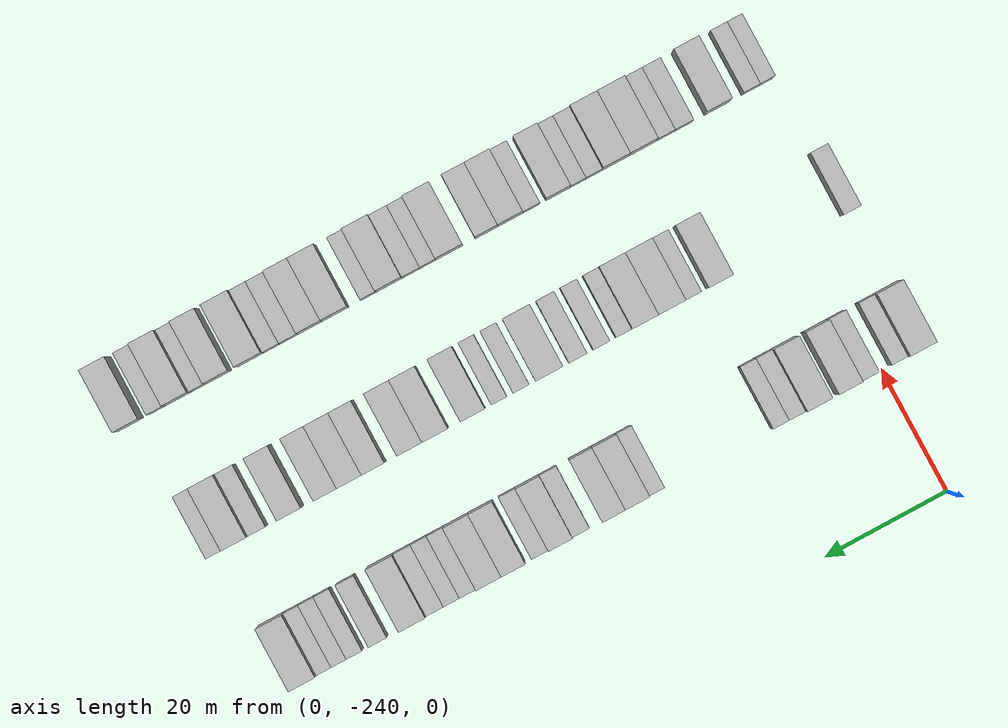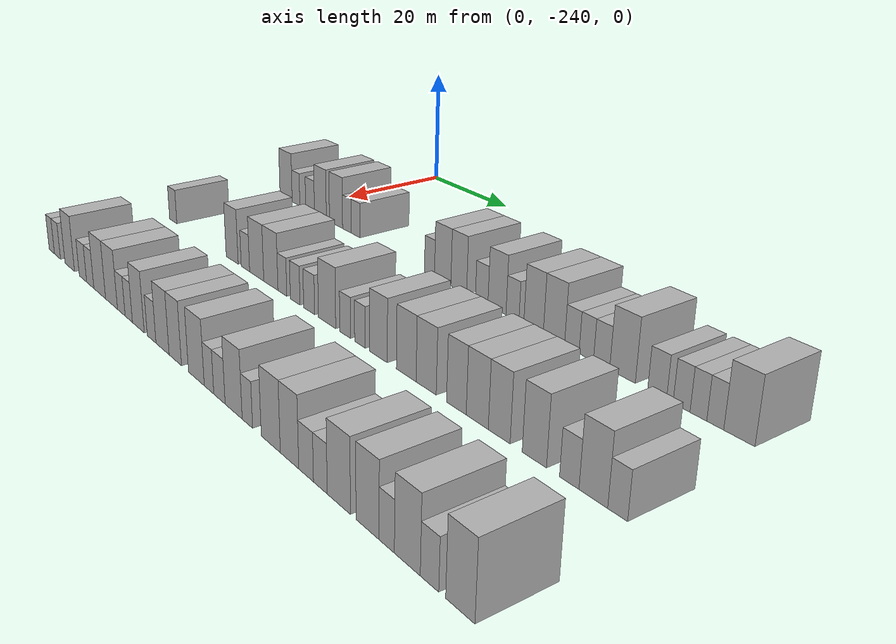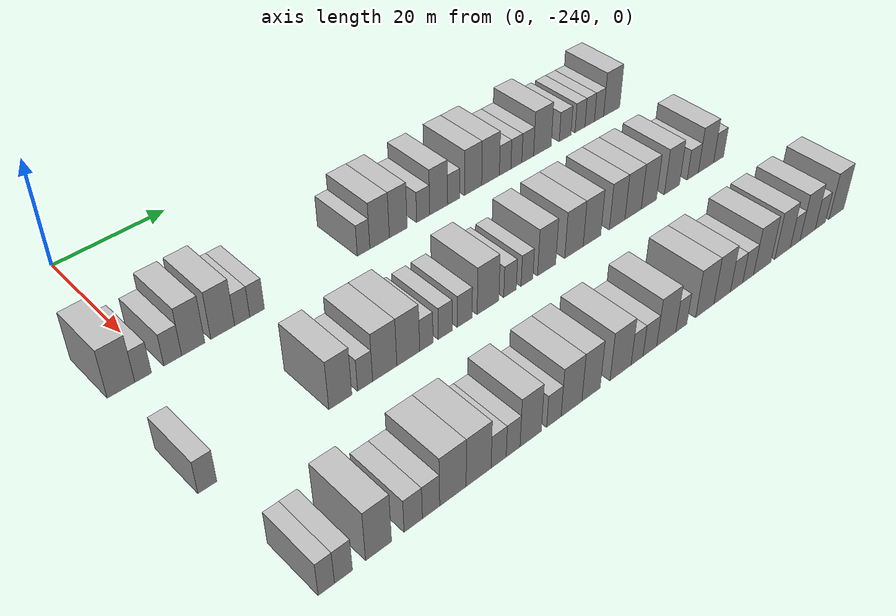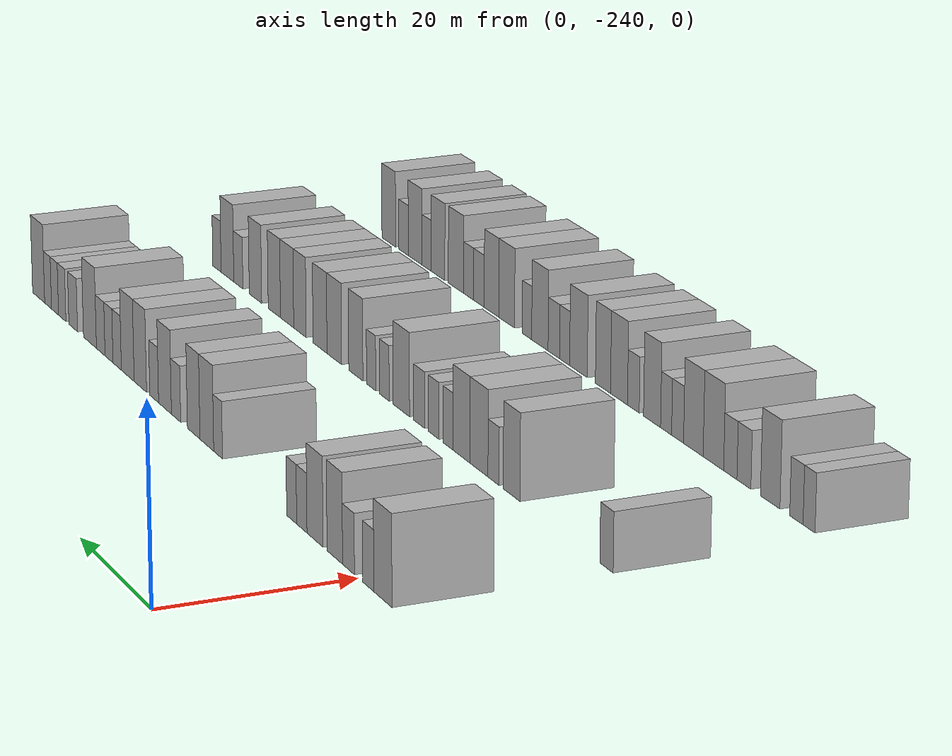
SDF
<sdf version="1.6">
 <world name="default">
  <model name="building_1">
   <static>1</static>
   <pose>25.0000 -245.8490 0 0.000000 0.000000 0.000000</pose>
   <link name="link">
    <pose>0 0 4.50 0 0 0</pose>
    <collision name="collision"><geometry><box><size>10.0000 4.3020 9.0000</size></box></geometry></collision>
    <visual name="visual">
     <cast_shadows>0</cast_shadows>
     <geometry><box><size>10.0000 4.3020 9.0000</size></box></geometry>
     <material>
      <script>
       <uri>model://HANNAS_wall/materials/scripts</uri>
       <uri>model://HANNAS_wall/materials/textures</uri>
       <name>vrc/HANNAS_wall</name>
      </script>
     </material>
    </visual>
   </link>
  </model>
  <model name="building_2">
   <static>1</static>
   <pose>25.0000 -242.3765 0 0.000000 0.000000 0.000000</pose>
   <link name="link">
    <pose>0 0 3.00 0 0 0</pose>
    <collision name="collision"><geometry><box><size>10.0000 2.6430 6.0000</size></box></geometry></collision>
    <visual name="visual">
     <cast_shadows>0</cast_shadows>
     <geometry><box><size>10.0000 2.6430 6.0000</size></box></geometry>
     <material>
      <script>
       <uri>model://HANNAS_wall/materials/scripts</uri>
       <uri>model://HANNAS_wall/materials/textures</uri>
       <name>vrc/HANNAS_wall</name>
      </script>
     </material>
    </visual>
   </link>
  </model>
  <model name="building_3">
   <static>1</static>
   <pose>25.0000 -237.5975 0 0.000000 0.000000 0.000000</pose>
   <link name="link">
    <pose>0 0 3.00 0 0 0</pose>
    <collision name="collision"><geometry><box><size>10.0000 2.9150 6.0000</size></box></geometry></collision>
    <visual name="visual">
     <cast_shadows>0</cast_shadows>
     <geometry><box><size>10.0000 2.9150 6.0000</size></box></geometry>
     <material>
      <script>
       <uri>model://HANNAS_wall/materials/scripts</uri>
       <uri>model://HANNAS_wall/materials/textures</uri>
       <name>vrc/HANNAS_wall</name>
      </script>
     </material>
    </visual>
   </link>
  </model>
  <model name="building_4">
   <static>1</static>
   <pose>25.0000 -234.2111 0 0.000000 0.000000 0.000000</pose>
   <link name="link">
    <pose>0 0 4.50 0 0 0</pose>
    <collision name="collision"><geometry><box><size>10.0000 3.8579 9.0000</size></box></geometry></collision>
    <visual name="visual">
     <cast_shadows>0</cast_shadows>
     <geometry><box><size>10.0000 3.8579 9.0000</size></box></geometry>
     <material>
      <script>
       <uri>model://HANNAS_wall/materials/scripts</uri>
       <uri>model://HANNAS_wall/materials/textures</uri>
       <name>vrc/HANNAS_wall</name>
      </script>
     </material>
    </visual>
   </link>
  </model>
  <model name="building_5">
   <static>1</static>
   <pose>25.0000 -229.2383 0 0.000000 0.000000 0.000000</pose>
   <link name="link">
    <pose>0 0 4.50 0 0 0</pose>
    <collision name="collision"><geometry><box><size>10.0000 4.0878 9.0000</size></box></geometry></collision>
    <visual name="visual">
     <cast_shadows>0</cast_shadows>
     <geometry><box><size>10.0000 4.0878 9.0000</size></box></geometry>
     <material>
      <script>
       <uri>model://HANNAS_wall/materials/scripts</uri>
       <uri>model://HANNAS_wall/materials/textures</uri>
       <name>vrc/HANNAS_wall</name>
      </script>
     </material>
    </visual>
   </link>
  </model>
  <model name="building_6">
   <static>1</static>
   <pose>25.0000 -225.8606 0 0.000000 0.000000 0.000000</pose>
   <link name="link">
    <pose>0 0 3.00 0 0 0</pose>
    <collision name="collision"><geometry><box><size>10.0000 2.6676 6.0000</size></box></geometry></collision>
    <visual name="visual">
     <cast_shadows>0</cast_shadows>
     <geometry><box><size>10.0000 2.6676 6.0000</size></box></geometry>
     <material>
      <script>
       <uri>model://HANNAS_wall/materials/scripts</uri>
       <uri>model://HANNAS_wall/materials/textures</uri>
       <name>vrc/HANNAS_wall</name>
      </script>
     </material>
    </visual>
   </link>
  </model>
  <model name="building_7">
   <static>1</static>
   <pose>25.0000 -223.2291 0 0.000000 0.000000 0.000000</pose>
   <link name="link">
    <pose>0 0 3.00 0 0 0</pose>
    <collision name="collision"><geometry><box><size>10.0000 2.5953 6.0000</size></box></geometry></collision>
    <visual name="visual">
     <cast_shadows>0</cast_shadows>
     <geometry><box><size>10.0000 2.5953 6.0000</size></box></geometry>
     <material>
      <script>
       <uri>model://HANNAS_wall/materials/scripts</uri>
       <uri>model://HANNAS_wall/materials/textures</uri>
       <name>vrc/HANNAS_wall</name>
      </script>
     </material>
    </visual>
   </link>
  </model>
  <model name="building_8">
   <static>1</static>
   <pose>25.0000 -203.1853 0 0.000000 0.000000 0.000000</pose>
   <link name="link">
    <pose>0 0 3.00 0 0 0</pose>
    <collision name="collision"><geometry><box><size>10.0000 2.4975 6.0000</size></box></geometry></collision>
    <visual name="visual">
     <cast_shadows>0</cast_shadows>
     <geometry><box><size>10.0000 2.4975 6.0000</size></box></geometry>
     <material>
      <script>
       <uri>model://HANNAS_wall/materials/scripts</uri>
       <uri>model://HANNAS_wall/materials/textures</uri>
       <name>vrc/HANNAS_wall</name>
      </script>
     </material>
    </visual>
   </link>
  </model>
  <model name="building_9">
   <static>1</static>
   <pose>25.0000 -199.9623 0 0.000000 0.000000 0.000000</pose>
   <link name="link">
    <pose>0 0 4.50 0 0 0</pose>
    <collision name="collision"><geometry><box><size>10.0000 3.9486 9.0000</size></box></geometry></collision>
    <visual name="visual">
     <cast_shadows>0</cast_shadows>
     <geometry><box><size>10.0000 3.9486 9.0000</size></box></geometry>
     <material>
      <script>
       <uri>model://HANNAS_wall/materials/scripts</uri>
       <uri>model://HANNAS_wall/materials/textures</uri>
       <name>vrc/HANNAS_wall</name>
      </script>
     </material>
    </visual>
   </link>
  </model>
  <model name="building_10">
   <static>1</static>
   <pose>25.0000 -196.1469 0 0.000000 0.000000 0.000000</pose>
   <link name="link">
    <pose>0 0 4.50 0 0 0</pose>
    <collision name="collision"><geometry><box><size>10.0000 3.6823 9.0000</size></box></geometry></collision>
    <visual name="visual">
     <cast_shadows>0</cast_shadows>
     <geometry><box><size>10.0000 3.6823 9.0000</size></box></geometry>
     <material>
      <script>
       <uri>model://HANNAS_wall/materials/scripts</uri>
       <uri>model://HANNAS_wall/materials/textures</uri>
       <name>vrc/HANNAS_wall</name>
      </script>
     </material>
    </visual>
   </link>
  </model>
  <model name="building_11">
   <static>1</static>
   <pose>25.0000 -190.9192 0 0.000000 0.000000 0.000000</pose>
   <link name="link">
    <pose>0 0 3.00 0 0 0</pose>
    <collision name="collision"><geometry><box><size>10.0000 2.7731 6.0000</size></box></geometry></collision>
    <visual name="visual">
     <cast_shadows>0</cast_shadows>
     <geometry><box><size>10.0000 2.7731 6.0000</size></box></geometry>
     <material>
      <script>
       <uri>model://HANNAS_wall/materials/scripts</uri>
       <uri>model://HANNAS_wall/materials/textures</uri>
       <name>vrc/HANNAS_wall</name>
      </script>
     </material>
    </visual>
   </link>
  </model>
  <model name="building_12">
   <static>1</static>
   <pose>25.0000 -187.5897 0 0.000000 0.000000 0.000000</pose>
   <link name="link">
    <pose>0 0 4.50 0 0 0</pose>
    <collision name="collision"><geometry><box><size>10.0000 3.8859 9.0000</size></box></geometry></collision>
    <visual name="visual">
     <cast_shadows>0</cast_shadows>
     <geometry><box><size>10.0000 3.8859 9.0000</size></box></geometry>
     <material>
      <script>
       <uri>model://HANNAS_wall/materials/scripts</uri>
       <uri>model://HANNAS_wall/materials/textures</uri>
       <name>vrc/HANNAS_wall</name>
      </script>
     </material>
    </visual>
   </link>
  </model>
  <model name="building_13">
   <static>1</static>
   <pose>25.0000 -184.2983 0 0.000000 0.000000 0.000000</pose>
   <link name="link">
    <pose>0 0 3.00 0 0 0</pose>
    <collision name="collision"><geometry><box><size>10.0000 2.6970 6.0000</size></box></geometry></collision>
    <visual name="visual">
     <cast_shadows>0</cast_shadows>
     <geometry><box><size>10.0000 2.6970 6.0000</size></box></geometry>
     <material>
      <script>
       <uri>model://HANNAS_wall/materials/scripts</uri>
       <uri>model://HANNAS_wall/materials/textures</uri>
       <name>vrc/HANNAS_wall</name>
      </script>
     </material>
    </visual>
   </link>
  </model>
  <model name="building_14">
   <static>1</static>
   <pose>25.0000 -180.0099 0 0.000000 0.000000 0.000000</pose>
   <link name="link">
    <pose>0 0 4.50 0 0 0</pose>
    <collision name="collision"><geometry><box><size>10.0000 3.8799 9.0000</size></box></geometry></collision>
    <visual name="visual">
     <cast_shadows>0</cast_shadows>
     <geometry><box><size>10.0000 3.8799 9.0000</size></box></geometry>
     <material>
      <script>
       <uri>model://HANNAS_wall/materials/scripts</uri>
       <uri>model://HANNAS_wall/materials/textures</uri>
       <name>vrc/HANNAS_wall</name>
      </script>
     </material>
    </visual>
   </link>
  </model>
  <model name="building_15">
   <static>1</static>
   <pose>25.0000 -176.0379 0 0.000000 0.000000 0.000000</pose>
   <link name="link">
    <pose>0 0 4.50 0 0 0</pose>
    <collision name="collision"><geometry><box><size>10.0000 4.0640 9.0000</size></box></geometry></collision>
    <visual name="visual">
     <cast_shadows>0</cast_shadows>
     <geometry><box><size>10.0000 4.0640 9.0000</size></box></geometry>
     <material>
      <script>
       <uri>model://HANNAS_wall/materials/scripts</uri>
       <uri>model://HANNAS_wall/materials/textures</uri>
       <name>vrc/HANNAS_wall</name>
      </script>
     </material>
    </visual>
   </link>
  </model>
  <model name="building_16">
   <static>1</static>
   <pose>25.0000 -172.6615 0 0.000000 0.000000 0.000000</pose>
   <link name="link">
    <pose>0 0 3.00 0 0 0</pose>
    <collision name="collision"><geometry><box><size>10.0000 2.6888 6.0000</size></box></geometry></collision>
    <visual name="visual">
     <cast_shadows>0</cast_shadows>
     <geometry><box><size>10.0000 2.6888 6.0000</size></box></geometry>
     <material>
      <script>
       <uri>model://HANNAS_wall/materials/scripts</uri>
       <uri>model://HANNAS_wall/materials/textures</uri>
       <name>vrc/HANNAS_wall</name>
      </script>
     </material>
    </visual>
   </link>
  </model>
  <model name="building_17">
   <static>1</static>
   <pose>25.0000 -170.0229 0 0.000000 0.000000 0.000000</pose>
   <link name="link">
    <pose>0 0 3.00 0 0 0</pose>
    <collision name="collision"><geometry><box><size>10.0000 2.5885 6.0000</size></box></geometry></collision>
    <visual name="visual">
     <cast_shadows>0</cast_shadows>
     <geometry><box><size>10.0000 2.5885 6.0000</size></box></geometry>
     <material>
      <script>
       <uri>model://HANNAS_wall/materials/scripts</uri>
       <uri>model://HANNAS_wall/materials/textures</uri>
       <name>vrc/HANNAS_wall</name>
      </script>
     </material>
    </visual>
   </link>
  </model>
  <model name="building_18">
   <static>1</static>
   <pose>25.0000 -167.3150 0 0.000000 0.000000 0.000000</pose>
   <link name="link">
    <pose>0 0 3.00 0 0 0</pose>
    <collision name="collision"><geometry><box><size>10.0000 2.8273 6.0000</size></box></geometry></collision>
    <visual name="visual">
     <cast_shadows>0</cast_shadows>
     <geometry><box><size>10.0000 2.8273 6.0000</size></box></geometry>
     <material>
      <script>
       <uri>model://HANNAS_wall/materials/scripts</uri>
       <uri>model://HANNAS_wall/materials/textures</uri>
       <name>vrc/HANNAS_wall</name>
      </script>
     </material>
    </visual>
   </link>
  </model>
  <model name="building_19">
   <static>1</static>
   <pose>25.0000 -163.7482 0 0.000000 0.000000 0.000000</pose>
   <link name="link">
    <pose>0 0 4.50 0 0 0</pose>
    <collision name="collision"><geometry><box><size>10.0000 4.3062 9.0000</size></box></geometry></collision>
    <visual name="visual">
     <cast_shadows>0</cast_shadows>
     <geometry><box><size>10.0000 4.3062 9.0000</size></box></geometry>
     <material>
      <script>
       <uri>model://HANNAS_wall/materials/scripts</uri>
       <uri>model://HANNAS_wall/materials/textures</uri>
       <name>vrc/HANNAS_wall</name>
      </script>
     </material>
    </visual>
   </link>
  </model>
  <model name="building_20">
   <static>1</static>
   <pose>25.0000 -158.1103 0 0.000000 0.000000 0.000000</pose>
   <link name="link">
    <pose>0 0 3.00 0 0 0</pose>
    <collision name="collision"><geometry><box><size>10.0000 2.9697 6.0000</size></box></geometry></collision>
    <visual name="visual">
     <cast_shadows>0</cast_shadows>
     <geometry><box><size>10.0000 2.9697 6.0000</size></box></geometry>
     <material>
      <script>
       <uri>model://HANNAS_wall/materials/scripts</uri>
       <uri>model://HANNAS_wall/materials/textures</uri>
       <name>vrc/HANNAS_wall</name>
      </script>
     </material>
    </visual>
   </link>
  </model>
  <model name="building_21">
   <static>1</static>
   <pose>25.0000 -154.3483 0 0.000000 0.000000 0.000000</pose>
   <link name="link">
    <pose>0 0 3.00 0 0 0</pose>
    <collision name="collision"><geometry><box><size>10.0000 2.5543 6.0000</size></box></geometry></collision>
    <visual name="visual">
     <cast_shadows>0</cast_shadows>
     <geometry><box><size>10.0000 2.5543 6.0000</size></box></geometry>
     <material>
      <script>
       <uri>model://HANNAS_wall/materials/scripts</uri>
       <uri>model://HANNAS_wall/materials/textures</uri>
       <name>vrc/HANNAS_wall</name>
      </script>
     </material>
    </visual>
   </link>
  </model>
  <model name="building_22">
   <static>1</static>
   <pose>25.0000 -151.8470 0 0.000000 0.000000 0.000000</pose>
   <link name="link">
    <pose>0 0 3.00 0 0 0</pose>
    <collision name="collision"><geometry><box><size>10.0000 2.4483 6.0000</size></box></geometry></collision>
    <visual name="visual">
     <cast_shadows>0</cast_shadows>
     <geometry><box><size>10.0000 2.4483 6.0000</size></box></geometry>
     <material>
      <script>
       <uri>model://HANNAS_wall/materials/scripts</uri>
       <uri>model://HANNAS_wall/materials/textures</uri>
       <name>vrc/HANNAS_wall</name>
      </script>
     </material>
    </visual>
   </link>
  </model>
  <model name="building_23">
   <static>1</static>
   <pose>25.0000 -149.4169 0 0.000000 0.000000 0.000000</pose>
   <link name="link">
    <pose>0 0 3.00 0 0 0</pose>
    <collision name="collision"><geometry><box><size>10.0000 2.4118 6.0000</size></box></geometry></collision>
    <visual name="visual">
     <cast_shadows>0</cast_shadows>
     <geometry><box><size>10.0000 2.4118 6.0000</size></box></geometry>
     <material>
      <script>
       <uri>model://HANNAS_wall/materials/scripts</uri>
       <uri>model://HANNAS_wall/materials/textures</uri>
       <name>vrc/HANNAS_wall</name>
      </script>
     </material>
    </visual>
   </link>
  </model>
  <model name="building_24">
   <static>1</static>
   <pose>25.0000 -146.0749 0 0.000000 0.000000 0.000000</pose>
   <link name="link">
    <pose>0 0 4.50 0 0 0</pose>
    <collision name="collision"><geometry><box><size>10.0000 4.2722 9.0000</size></box></geometry></collision>
    <visual name="visual">
     <cast_shadows>0</cast_shadows>
     <geometry><box><size>10.0000 4.2722 9.0000</size></box></geometry>
     <material>
      <script>
       <uri>model://HANNAS_wall/materials/scripts</uri>
       <uri>model://HANNAS_wall/materials/textures</uri>
       <name>vrc/HANNAS_wall</name>
      </script>
     </material>
    </visual>
   </link>
  </model>
  <model name="building_126">
   <static>1</static>
   <pose>47.0000 -246.5776 0 0.000000 0.000000 0.000000</pose>
   <link name="link">
    <pose>0 0 3.00 0 0 0</pose>
    <collision name="collision"><geometry><box><size>10.0000 2.8448 6.0000</size></box></geometry></collision>
    <visual name="visual">
     <cast_shadows>0</cast_shadows>
     <geometry><box><size>10.0000 2.8448 6.0000</size></box></geometry>
     <material>
      <script>
       <uri>model://HANNAS_wall/materials/scripts</uri>
       <uri>model://HANNAS_wall/materials/textures</uri>
       <name>vrc/HANNAS_wall</name>
      </script>
     </material>
    </visual>
   </link>
  </model>
  <model name="building_127">
   <static>1</static>
   <pose>47.0000 -225.2253 0 0.000000 0.000000 0.000000</pose>
   <link name="link">
    <pose>0 0 4.50 0 0 0</pose>
    <collision name="collision"><geometry><box><size>10.0000 3.9532 9.0000</size></box></geometry></collision>
    <visual name="visual">
     <cast_shadows>0</cast_shadows>
     <geometry><box><size>10.0000 3.9532 9.0000</size></box></geometry>
     <material>
      <script>
       <uri>model://HANNAS_wall/materials/scripts</uri>
       <uri>model://HANNAS_wall/materials/textures</uri>
       <name>vrc/HANNAS_wall</name>
      </script>
     </material>
    </visual>
   </link>
  </model>
  <model name="building_128">
   <static>1</static>
   <pose>47.0000 -220.9127 0 0.000000 0.000000 0.000000</pose>
   <link name="link">
    <pose>0 0 3.00 0 0 0</pose>
    <collision name="collision"><geometry><box><size>10.0000 2.6721 6.0000</size></box></geometry></collision>
    <visual name="visual">
     <cast_shadows>0</cast_shadows>
     <geometry><box><size>10.0000 2.6721 6.0000</size></box></geometry>
     <material>
      <script>
       <uri>model://HANNAS_wall/materials/scripts</uri>
       <uri>model://HANNAS_wall/materials/textures</uri>
       <name>vrc/HANNAS_wall</name>
      </script>
     </material>
    </visual>
   </link>
  </model>
  <model name="building_129">
   <static>1</static>
   <pose>47.0000 -217.3931 0 0.000000 0.000000 0.000000</pose>
   <link name="link">
    <pose>0 0 4.50 0 0 0</pose>
    <collision name="collision"><geometry><box><size>10.0000 4.3670 9.0000</size></box></geometry></collision>
    <visual name="visual">
     <cast_shadows>0</cast_shadows>
     <geometry><box><size>10.0000 4.3670 9.0000</size></box></geometry>
     <material>
      <script>
       <uri>model://HANNAS_wall/materials/scripts</uri>
       <uri>model://HANNAS_wall/materials/textures</uri>
       <name>vrc/HANNAS_wall</name>
      </script>
     </material>
    </visual>
   </link>
  </model>
  <model name="building_130">
   <static>1</static>
   <pose>47.0000 -213.0997 0 0.000000 0.000000 0.000000</pose>
   <link name="link">
    <pose>0 0 4.50 0 0 0</pose>
    <collision name="collision"><geometry><box><size>10.0000 4.2197 9.0000</size></box></geometry></collision>
    <visual name="visual">
     <cast_shadows>0</cast_shadows>
     <geometry><box><size>10.0000 4.2197 9.0000</size></box></geometry>
     <material>
      <script>
       <uri>model://HANNAS_wall/materials/scripts</uri>
       <uri>model://HANNAS_wall/materials/textures</uri>
       <name>vrc/HANNAS_wall</name>
      </script>
     </material>
    </visual>
   </link>
  </model>
  <model name="building_131">
   <static>1</static>
   <pose>47.0000 -209.7221 0 0.000000 0.000000 0.000000</pose>
   <link name="link">
    <pose>0 0 3.00 0 0 0</pose>
    <collision name="collision"><geometry><box><size>10.0000 2.5355 6.0000</size></box></geometry></collision>
    <visual name="visual">
     <cast_shadows>0</cast_shadows>
     <geometry><box><size>10.0000 2.5355 6.0000</size></box></geometry>
     <material>
      <script>
       <uri>model://HANNAS_wall/materials/scripts</uri>
       <uri>model://HANNAS_wall/materials/textures</uri>
       <name>vrc/HANNAS_wall</name>
      </script>
     </material>
    </visual>
   </link>
  </model>
  <model name="building_132">
   <static>1</static>
   <pose>47.0000 -206.1162 0 0.000000 0.000000 0.000000</pose>
   <link name="link">
    <pose>0 0 3.00 0 0 0</pose>
    <collision name="collision"><geometry><box><size>10.0000 2.6763 6.0000</size></box></geometry></collision>
    <visual name="visual">
     <cast_shadows>0</cast_shadows>
     <geometry><box><size>10.0000 2.6763 6.0000</size></box></geometry>
     <material>
      <script>
       <uri>model://HANNAS_wall/materials/scripts</uri>
       <uri>model://HANNAS_wall/materials/textures</uri>
       <name>vrc/HANNAS_wall</name>
      </script>
     </material>
    </visual>
   </link>
  </model>
  <model name="building_133">
   <static>1</static>
   <pose>47.0000 -202.3141 0 0.000000 0.000000 0.000000</pose>
   <link name="link">
    <pose>0 0 3.00 0 0 0</pose>
    <collision name="collision"><geometry><box><size>10.0000 2.9279 6.0000</size></box></geometry></collision>
    <visual name="visual">
     <cast_shadows>0</cast_shadows>
     <geometry><box><size>10.0000 2.9279 6.0000</size></box></geometry>
     <material>
      <script>
       <uri>model://HANNAS_wall/materials/scripts</uri>
       <uri>model://HANNAS_wall/materials/textures</uri>
       <name>vrc/HANNAS_wall</name>
      </script>
     </material>
    </visual>
   </link>
  </model>
  <model name="building_134">
   <static>1</static>
   <pose>47.0000 -197.6455 0 0.000000 0.000000 0.000000</pose>
   <link name="link">
    <pose>0 0 4.50 0 0 0</pose>
    <collision name="collision"><geometry><box><size>10.0000 4.4094 9.0000</size></box></geometry></collision>
    <visual name="visual">
     <cast_shadows>0</cast_shadows>
     <geometry><box><size>10.0000 4.4094 9.0000</size></box></geometry>
     <material>
      <script>
       <uri>model://HANNAS_wall/materials/scripts</uri>
       <uri>model://HANNAS_wall/materials/textures</uri>
       <name>vrc/HANNAS_wall</name>
      </script>
     </material>
    </visual>
   </link>
  </model>
  <model name="building_135">
   <static>1</static>
   <pose>47.0000 -193.1348 0 0.000000 0.000000 0.000000</pose>
   <link name="link">
    <pose>0 0 3.00 0 0 0</pose>
    <collision name="collision"><geometry><box><size>10.0000 2.6119 6.0000</size></box></geometry></collision>
    <visual name="visual">
     <cast_shadows>0</cast_shadows>
     <geometry><box><size>10.0000 2.6119 6.0000</size></box></geometry>
     <material>
      <script>
       <uri>model://HANNAS_wall/materials/scripts</uri>
       <uri>model://HANNAS_wall/materials/textures</uri>
       <name>vrc/HANNAS_wall</name>
      </script>
     </material>
    </visual>
   </link>
  </model>
  <model name="building_136">
   <static>1</static>
   <pose>47.0000 -189.5733 0 0.000000 0.000000 0.000000</pose>
   <link name="link">
    <pose>0 0 3.00 0 0 0</pose>
    <collision name="collision"><geometry><box><size>10.0000 2.5112 6.0000</size></box></geometry></collision>
    <visual name="visual">
     <cast_shadows>0</cast_shadows>
     <geometry><box><size>10.0000 2.5112 6.0000</size></box></geometry>
     <material>
      <script>
       <uri>model://HANNAS_wall/materials/scripts</uri>
       <uri>model://HANNAS_wall/materials/textures</uri>
       <name>vrc/HANNAS_wall</name>
      </script>
     </material>
    </visual>
   </link>
  </model>
  <model name="building_137">
   <static>1</static>
   <pose>47.0000 -185.3455 0 0.000000 0.000000 0.000000</pose>
   <link name="link">
    <pose>0 0 4.50 0 0 0</pose>
    <collision name="collision"><geometry><box><size>10.0000 3.9444 9.0000</size></box></geometry></collision>
    <visual name="visual">
     <cast_shadows>0</cast_shadows>
     <geometry><box><size>10.0000 3.9444 9.0000</size></box></geometry>
     <material>
      <script>
       <uri>model://HANNAS_wall/materials/scripts</uri>
       <uri>model://HANNAS_wall/materials/textures</uri>
       <name>vrc/HANNAS_wall</name>
      </script>
     </material>
    </visual>
   </link>
  </model>
  <model name="building_138">
   <static>1</static>
   <pose>47.0000 -179.2974 0 0.000000 0.000000 0.000000</pose>
   <link name="link">
    <pose>0 0 4.50 0 0 0</pose>
    <collision name="collision"><geometry><box><size>10.0000 4.1519 9.0000</size></box></geometry></collision>
    <visual name="visual">
     <cast_shadows>0</cast_shadows>
     <geometry><box><size>10.0000 4.1519 9.0000</size></box></geometry>
     <material>
      <script>
       <uri>model://HANNAS_wall/materials/scripts</uri>
       <uri>model://HANNAS_wall/materials/textures</uri>
       <name>vrc/HANNAS_wall</name>
      </script>
     </material>
    </visual>
   </link>
  </model>
  <model name="building_139">
   <static>1</static>
   <pose>47.0000 -175.2024 0 0.000000 0.000000 0.000000</pose>
   <link name="link">
    <pose>0 0 4.50 0 0 0</pose>
    <collision name="collision"><geometry><box><size>10.0000 4.0380 9.0000</size></box></geometry></collision>
    <visual name="visual">
     <cast_shadows>0</cast_shadows>
     <geometry><box><size>10.0000 4.0380 9.0000</size></box></geometry>
     <material>
      <script>
       <uri>model://HANNAS_wall/materials/scripts</uri>
       <uri>model://HANNAS_wall/materials/textures</uri>
       <name>vrc/HANNAS_wall</name>
      </script>
     </material>
    </visual>
   </link>
  </model>
  <model name="building_140">
   <static>1</static>
   <pose>47.0000 -169.3364 0 0.000000 0.000000 0.000000</pose>
   <link name="link">
    <pose>0 0 4.50 0 0 0</pose>
    <collision name="collision"><geometry><box><size>10.0000 3.6941 9.0000</size></box></geometry></collision>
    <visual name="visual">
     <cast_shadows>0</cast_shadows>
     <geometry><box><size>10.0000 3.6941 9.0000</size></box></geometry>
     <material>
      <script>
       <uri>model://HANNAS_wall/materials/scripts</uri>
       <uri>model://HANNAS_wall/materials/textures</uri>
       <name>vrc/HANNAS_wall</name>
      </script>
     </material>
    </visual>
   </link>
  </model>
  <model name="building_141">
   <static>1</static>
   <pose>47.0000 -165.5065 0 0.000000 0.000000 0.000000</pose>
   <link name="link">
    <pose>0 0 4.50 0 0 0</pose>
    <collision name="collision"><geometry><box><size>10.0000 3.9657 9.0000</size></box></geometry></collision>
    <visual name="visual">
     <cast_shadows>0</cast_shadows>
     <geometry><box><size>10.0000 3.9657 9.0000</size></box></geometry>
     <material>
      <script>
       <uri>model://HANNAS_wall/materials/scripts</uri>
       <uri>model://HANNAS_wall/materials/textures</uri>
       <name>vrc/HANNAS_wall</name>
      </script>
     </material>
    </visual>
   </link>
  </model>
  <model name="building_142">
   <static>1</static>
   <pose>47.0000 -161.6528 0 0.000000 0.000000 0.000000</pose>
   <link name="link">
    <pose>0 0 4.50 0 0 0</pose>
    <collision name="collision"><geometry><box><size>10.0000 3.7416 9.0000</size></box></geometry></collision>
    <visual name="visual">
     <cast_shadows>0</cast_shadows>
     <geometry><box><size>10.0000 3.7416 9.0000</size></box></geometry>
     <material>
      <script>
       <uri>model://HANNAS_wall/materials/scripts</uri>
       <uri>model://HANNAS_wall/materials/textures</uri>
       <name>vrc/HANNAS_wall</name>
      </script>
     </material>
    </visual>
   </link>
  </model>
  <model name="building_143">
   <static>1</static>
   <pose>47.0000 -155.8462 0 0.000000 0.000000 0.000000</pose>
   <link name="link">
    <pose>0 0 4.50 0 0 0</pose>
    <collision name="collision"><geometry><box><size>10.0000 3.8716 9.0000</size></box></geometry></collision>
    <visual name="visual">
     <cast_shadows>0</cast_shadows>
     <geometry><box><size>10.0000 3.8716 9.0000</size></box></geometry>
     <material>
      <script>
       <uri>model://HANNAS_wall/materials/scripts</uri>
       <uri>model://HANNAS_wall/materials/textures</uri>
       <name>vrc/HANNAS_wall</name>
      </script>
     </material>
    </visual>
   </link>
  </model>
  <model name="building_144">
   <static>1</static>
   <pose>47.0000 -150.4656 0 0.000000 0.000000 0.000000</pose>
   <link name="link">
    <pose>0 0 3.00 0 0 0</pose>
    <collision name="collision"><geometry><box><size>10.0000 2.8896 6.0000</size></box></geometry></collision>
    <visual name="visual">
     <cast_shadows>0</cast_shadows>
     <geometry><box><size>10.0000 2.8896 6.0000</size></box></geometry>
     <material>
      <script>
       <uri>model://HANNAS_wall/materials/scripts</uri>
       <uri>model://HANNAS_wall/materials/textures</uri>
       <name>vrc/HANNAS_wall</name>
      </script>
     </material>
    </visual>
   </link>
  </model>
  <model name="building_145">
   <static>1</static>
   <pose>47.0000 -146.9824 0 0.000000 0.000000 0.000000</pose>
   <link name="link">
    <pose>0 0 4.50 0 0 0</pose>
    <collision name="collision"><geometry><box><size>10.0000 4.0767 9.0000</size></box></geometry></collision>
    <visual name="visual">
     <cast_shadows>0</cast_shadows>
     <geometry><box><size>10.0000 4.0767 9.0000</size></box></geometry>
     <material>
      <script>
       <uri>model://HANNAS_wall/materials/scripts</uri>
       <uri>model://HANNAS_wall/materials/textures</uri>
       <name>vrc/HANNAS_wall</name>
      </script>
     </material>
    </visual>
   </link>
  </model>
  <model name="building_146">
   <static>1</static>
   <pose>47.0000 -143.5938 0 0.000000 0.000000 0.000000</pose>
   <link name="link">
    <pose>0 0 3.00 0 0 0</pose>
    <collision name="collision"><geometry><box><size>10.0000 2.7006 6.0000</size></box></geometry></collision>
    <visual name="visual">
     <cast_shadows>0</cast_shadows>
     <geometry><box><size>10.0000 2.7006 6.0000</size></box></geometry>
     <material>
      <script>
       <uri>model://HANNAS_wall/materials/scripts</uri>
       <uri>model://HANNAS_wall/materials/textures</uri>
       <name>vrc/HANNAS_wall</name>
      </script>
     </material>
    </visual>
   </link>
  </model>
  <model name="building_245">
   <static>1</static>
   <pose>69.0000 -244.7943 0 0.000000 0.000000 0.000000</pose>
   <link name="link">
    <pose>0 0 3.00 0 0 0</pose>
    <collision name="collision"><geometry><box><size>10.0000 2.4115 6.0000</size></box></geometry></collision>
    <visual name="visual">
     <cast_shadows>0</cast_shadows>
     <geometry><box><size>10.0000 2.4115 6.0000</size></box></geometry>
     <material>
      <script>
       <uri>model://HANNAS_wall/materials/scripts</uri>
       <uri>model://HANNAS_wall/materials/textures</uri>
       <name>vrc/HANNAS_wall</name>
      </script>
     </material>
    </visual>
   </link>
  </model>
  <model name="building_246">
   <static>1</static>
   <pose>69.0000 -242.2396 0 0.000000 0.000000 0.000000</pose>
   <link name="link">
    <pose>0 0 3.00 0 0 0</pose>
    <collision name="collision"><geometry><box><size>10.0000 2.6978 6.0000</size></box></geometry></collision>
    <visual name="visual">
     <cast_shadows>0</cast_shadows>
     <geometry><box><size>10.0000 2.6978 6.0000</size></box></geometry>
     <material>
      <script>
       <uri>model://HANNAS_wall/materials/scripts</uri>
       <uri>model://HANNAS_wall/materials/textures</uri>
       <name>vrc/HANNAS_wall</name>
      </script>
     </material>
    </visual>
   </link>
  </model>
  <model name="building_247">
   <static>1</static>
   <pose>69.0000 -236.8639 0 0.000000 0.000000 0.000000</pose>
   <link name="link">
    <pose>0 0 4.50 0 0 0</pose>
    <collision name="collision"><geometry><box><size>10.0000 4.0537 9.0000</size></box></geometry></collision>
    <visual name="visual">
     <cast_shadows>0</cast_shadows>
     <geometry><box><size>10.0000 4.0537 9.0000</size></box></geometry>
     <material>
      <script>
       <uri>model://HANNAS_wall/materials/scripts</uri>
       <uri>model://HANNAS_wall/materials/textures</uri>
       <name>vrc/HANNAS_wall</name>
      </script>
     </material>
    </visual>
   </link>
  </model>
  <model name="building_248">
   <static>1</static>
   <pose>69.0000 -231.3515 0 0.000000 0.000000 0.000000</pose>
   <link name="link">
    <pose>0 0 3.00 0 0 0</pose>
    <collision name="collision"><geometry><box><size>10.0000 2.9710 6.0000</size></box></geometry></collision>
    <visual name="visual">
     <cast_shadows>0</cast_shadows>
     <geometry><box><size>10.0000 2.9710 6.0000</size></box></geometry>
     <material>
      <script>
       <uri>model://HANNAS_wall/materials/scripts</uri>
       <uri>model://HANNAS_wall/materials/textures</uri>
       <name>vrc/HANNAS_wall</name>
      </script>
     </material>
    </visual>
   </link>
  </model>
  <model name="building_249">
   <static>1</static>
   <pose>69.0000 -228.4374 0 0.000000 0.000000 0.000000</pose>
   <link name="link">
    <pose>0 0 3.00 0 0 0</pose>
    <collision name="collision"><geometry><box><size>10.0000 2.8572 6.0000</size></box></geometry></collision>
    <visual name="visual">
     <cast_shadows>0</cast_shadows>
     <geometry><box><size>10.0000 2.8572 6.0000</size></box></geometry>
     <material>
      <script>
       <uri>model://HANNAS_wall/materials/scripts</uri>
       <uri>model://HANNAS_wall/materials/textures</uri>
       <name>vrc/HANNAS_wall</name>
      </script>
     </material>
    </visual>
   </link>
  </model>
  <model name="building_250">
   <static>1</static>
   <pose>69.0000 -224.7662 0 0.000000 0.000000 0.000000</pose>
   <link name="link">
    <pose>0 0 4.50 0 0 0</pose>
    <collision name="collision"><geometry><box><size>10.0000 4.4852 9.0000</size></box></geometry></collision>
    <visual name="visual">
     <cast_shadows>0</cast_shadows>
     <geometry><box><size>10.0000 4.4852 9.0000</size></box></geometry>
     <material>
      <script>
       <uri>model://HANNAS_wall/materials/scripts</uri>
       <uri>model://HANNAS_wall/materials/textures</uri>
       <name>vrc/HANNAS_wall</name>
      </script>
     </material>
    </visual>
   </link>
  </model>
  <model name="building_251">
   <static>1</static>
   <pose>69.0000 -220.3438 0 0.000000 0.000000 0.000000</pose>
   <link name="link">
    <pose>0 0 4.50 0 0 0</pose>
    <collision name="collision"><geometry><box><size>10.0000 4.3597 9.0000</size></box></geometry></collision>
    <visual name="visual">
     <cast_shadows>0</cast_shadows>
     <geometry><box><size>10.0000 4.3597 9.0000</size></box></geometry>
     <material>
      <script>
       <uri>model://HANNAS_wall/materials/scripts</uri>
       <uri>model://HANNAS_wall/materials/textures</uri>
       <name>vrc/HANNAS_wall</name>
      </script>
     </material>
    </visual>
   </link>
  </model>
  <model name="building_252">
   <static>1</static>
   <pose>69.0000 -216.8131 0 0.000000 0.000000 0.000000</pose>
   <link name="link">
    <pose>0 0 3.00 0 0 0</pose>
    <collision name="collision"><geometry><box><size>10.0000 2.7017 6.0000</size></box></geometry></collision>
    <visual name="visual">
     <cast_shadows>0</cast_shadows>
     <geometry><box><size>10.0000 2.7017 6.0000</size></box></geometry>
     <material>
      <script>
       <uri>model://HANNAS_wall/materials/scripts</uri>
       <uri>model://HANNAS_wall/materials/textures</uri>
       <name>vrc/HANNAS_wall</name>
      </script>
     </material>
    </visual>
   </link>
  </model>
  <model name="building_253">
   <static>1</static>
   <pose>69.0000 -214.2033 0 0.000000 0.000000 0.000000</pose>
   <link name="link">
    <pose>0 0 3.00 0 0 0</pose>
    <collision name="collision"><geometry><box><size>10.0000 2.5180 6.0000</size></box></geometry></collision>
    <visual name="visual">
     <cast_shadows>0</cast_shadows>
     <geometry><box><size>10.0000 2.5180 6.0000</size></box></geometry>
     <material>
      <script>
       <uri>model://HANNAS_wall/materials/scripts</uri>
       <uri>model://HANNAS_wall/materials/textures</uri>
       <name>vrc/HANNAS_wall</name>
      </script>
     </material>
    </visual>
   </link>
  </model>
  <model name="building_254">
   <static>1</static>
   <pose>69.0000 -210.9725 0 0.000000 0.000000 0.000000</pose>
   <link name="link">
    <pose>0 0 4.50 0 0 0</pose>
    <collision name="collision"><geometry><box><size>10.0000 3.9435 9.0000</size></box></geometry></collision>
    <visual name="visual">
     <cast_shadows>0</cast_shadows>
     <geometry><box><size>10.0000 3.9435 9.0000</size></box></geometry>
     <material>
      <script>
       <uri>model://HANNAS_wall/materials/scripts</uri>
       <uri>model://HANNAS_wall/materials/textures</uri>
       <name>vrc/HANNAS_wall</name>
      </script>
     </material>
    </visual>
   </link>
  </model>
  <model name="building_255">
   <static>1</static>
   <pose>69.0000 -206.6140 0 0.000000 0.000000 0.000000</pose>
   <link name="link">
    <pose>0 0 3.00 0 0 0</pose>
    <collision name="collision"><geometry><box><size>10.0000 2.7736 6.0000</size></box></geometry></collision>
    <visual name="visual">
     <cast_shadows>0</cast_shadows>
     <geometry><box><size>10.0000 2.7736 6.0000</size></box></geometry>
     <material>
      <script>
       <uri>model://HANNAS_wall/materials/scripts</uri>
       <uri>model://HANNAS_wall/materials/textures</uri>
       <name>vrc/HANNAS_wall</name>
      </script>
     </material>
    </visual>
   </link>
  </model>
  <model name="building_256">
   <static>1</static>
   <pose>69.0000 -203.2015 0 0.000000 0.000000 0.000000</pose>
   <link name="link">
    <pose>0 0 4.50 0 0 0</pose>
    <collision name="collision"><geometry><box><size>10.0000 4.0513 9.0000</size></box></geometry></collision>
    <visual name="visual">
     <cast_shadows>0</cast_shadows>
     <geometry><box><size>10.0000 4.0513 9.0000</size></box></geometry>
     <material>
      <script>
       <uri>model://HANNAS_wall/materials/scripts</uri>
       <uri>model://HANNAS_wall/materials/textures</uri>
       <name>vrc/HANNAS_wall</name>
      </script>
     </material>
    </visual>
   </link>
  </model>
  <model name="building_257">
   <static>1</static>
   <pose>69.0000 -199.3452 0 0.000000 0.000000 0.000000</pose>
   <link name="link">
    <pose>0 0 4.50 0 0 0</pose>
    <collision name="collision"><geometry><box><size>10.0000 3.6614 9.0000</size></box></geometry></collision>
    <visual name="visual">
     <cast_shadows>0</cast_shadows>
     <geometry><box><size>10.0000 3.6614 9.0000</size></box></geometry>
     <material>
      <script>
       <uri>model://HANNAS_wall/materials/scripts</uri>
       <uri>model://HANNAS_wall/materials/textures</uri>
       <name>vrc/HANNAS_wall</name>
      </script>
     </material>
    </visual>
   </link>
  </model>
  <model name="building_258">
   <static>1</static>
   <pose>69.0000 -193.3284 0 0.000000 0.000000 0.000000</pose>
   <link name="link">
    <pose>0 0 4.50 0 0 0</pose>
    <collision name="collision"><geometry><box><size>10.0000 4.3722 9.0000</size></box></geometry></collision>
    <visual name="visual">
     <cast_shadows>0</cast_shadows>
     <geometry><box><size>10.0000 4.3722 9.0000</size></box></geometry>
     <material>
      <script>
       <uri>model://HANNAS_wall/materials/scripts</uri>
       <uri>model://HANNAS_wall/materials/textures</uri>
       <name>vrc/HANNAS_wall</name>
      </script>
     </material>
    </visual>
   </link>
  </model>
  <model name="building_259">
   <static>1</static>
   <pose>69.0000 -189.8774 0 0.000000 0.000000 0.000000</pose>
   <link name="link">
    <pose>0 0 3.00 0 0 0</pose>
    <collision name="collision"><geometry><box><size>10.0000 2.5297 6.0000</size></box></geometry></collision>
    <visual name="visual">
     <cast_shadows>0</cast_shadows>
     <geometry><box><size>10.0000 2.5297 6.0000</size></box></geometry>
     <material>
      <script>
       <uri>model://HANNAS_wall/materials/scripts</uri>
       <uri>model://HANNAS_wall/materials/textures</uri>
       <name>vrc/HANNAS_wall</name>
      </script>
     </material>
    </visual>
   </link>
  </model>
  <model name="building_260">
   <static>1</static>
   <pose>69.0000 -187.1497 0 0.000000 0.000000 0.000000</pose>
   <link name="link">
    <pose>0 0 3.00 0 0 0</pose>
    <collision name="collision"><geometry><box><size>10.0000 2.9259 6.0000</size></box></geometry></collision>
    <visual name="visual">
     <cast_shadows>0</cast_shadows>
     <geometry><box><size>10.0000 2.9259 6.0000</size></box></geometry>
     <material>
      <script>
       <uri>model://HANNAS_wall/materials/scripts</uri>
       <uri>model://HANNAS_wall/materials/textures</uri>
       <name>vrc/HANNAS_wall</name>
      </script>
     </material>
    </visual>
   </link>
  </model>
  <model name="building_261">
   <static>1</static>
   <pose>69.0000 -183.5701 0 0.000000 0.000000 0.000000</pose>
   <link name="link">
    <pose>0 0 4.50 0 0 0</pose>
    <collision name="collision"><geometry><box><size>10.0000 4.2332 9.0000</size></box></geometry></collision>
    <visual name="visual">
     <cast_shadows>0</cast_shadows>
     <geometry><box><size>10.0000 4.2332 9.0000</size></box></geometry>
     <material>
      <script>
       <uri>model://HANNAS_wall/materials/scripts</uri>
       <uri>model://HANNAS_wall/materials/textures</uri>
       <name>vrc/HANNAS_wall</name>
      </script>
     </material>
    </visual>
   </link>
  </model>
  <model name="building_262">
   <static>1</static>
   <pose>69.0000 -180.2141 0 0.000000 0.000000 0.000000</pose>
   <link name="link">
    <pose>0 0 3.00 0 0 0</pose>
    <collision name="collision"><geometry><box><size>10.0000 2.4788 6.0000</size></box></geometry></collision>
    <visual name="visual">
     <cast_shadows>0</cast_shadows>
     <geometry><box><size>10.0000 2.4788 6.0000</size></box></geometry>
     <material>
      <script>
       <uri>model://HANNAS_wall/materials/scripts</uri>
       <uri>model://HANNAS_wall/materials/textures</uri>
       <name>vrc/HANNAS_wall</name>
      </script>
     </material>
    </visual>
   </link>
  </model>
  <model name="building_263">
   <static>1</static>
   <pose>69.0000 -174.8517 0 0.000000 0.000000 0.000000</pose>
   <link name="link">
    <pose>0 0 4.50 0 0 0</pose>
    <collision name="collision"><geometry><box><size>10.0000 4.2461 9.0000</size></box></geometry></collision>
    <visual name="visual">
     <cast_shadows>0</cast_shadows>
     <geometry><box><size>10.0000 4.2461 9.0000</size></box></geometry>
     <material>
      <script>
       <uri>model://HANNAS_wall/materials/scripts</uri>
       <uri>model://HANNAS_wall/materials/textures</uri>
       <name>vrc/HANNAS_wall</name>
      </script>
     </material>
    </visual>
   </link>
  </model>
  <model name="building_264">
   <static>1</static>
   <pose>69.0000 -170.7779 0 0.000000 0.000000 0.000000</pose>
   <link name="link">
    <pose>0 0 4.50 0 0 0</pose>
    <collision name="collision"><geometry><box><size>10.0000 3.9015 9.0000</size></box></geometry></collision>
    <visual name="visual">
     <cast_shadows>0</cast_shadows>
     <geometry><box><size>10.0000 3.9015 9.0000</size></box></geometry>
     <material>
      <script>
       <uri>model://HANNAS_wall/materials/scripts</uri>
       <uri>model://HANNAS_wall/materials/textures</uri>
       <name>vrc/HANNAS_wall</name>
      </script>
     </material>
    </visual>
   </link>
  </model>
  <model name="building_265">
   <static>1</static>
   <pose>69.0000 -167.3401 0 0.000000 0.000000 0.000000</pose>
   <link name="link">
    <pose>0 0 3.00 0 0 0</pose>
    <collision name="collision"><geometry><box><size>10.0000 2.9740 6.0000</size></box></geometry></collision>
    <visual name="visual">
     <cast_shadows>0</cast_shadows>
     <geometry><box><size>10.0000 2.9740 6.0000</size></box></geometry>
     <material>
      <script>
       <uri>model://HANNAS_wall/materials/scripts</uri>
       <uri>model://HANNAS_wall/materials/textures</uri>
       <name>vrc/HANNAS_wall</name>
      </script>
     </material>
    </visual>
   </link>
  </model>
  <model name="building_266">
   <static>1</static>
   <pose>69.0000 -164.5119 0 0.000000 0.000000 0.000000</pose>
   <link name="link">
    <pose>0 0 3.00 0 0 0</pose>
    <collision name="collision"><geometry><box><size>10.0000 2.6824 6.0000</size></box></geometry></collision>
    <visual name="visual">
     <cast_shadows>0</cast_shadows>
     <geometry><box><size>10.0000 2.6824 6.0000</size></box></geometry>
     <material>
      <script>
       <uri>model://HANNAS_wall/materials/scripts</uri>
       <uri>model://HANNAS_wall/materials/textures</uri>
       <name>vrc/HANNAS_wall</name>
      </script>
     </material>
    </visual>
   </link>
  </model>
  <model name="building_267">
   <static>1</static>
   <pose>69.0000 -161.0131 0 0.000000 0.000000 0.000000</pose>
   <link name="link">
    <pose>0 0 4.50 0 0 0</pose>
    <collision name="collision"><geometry><box><size>10.0000 4.3152 9.0000</size></box></geometry></collision>
    <visual name="visual">
     <cast_shadows>0</cast_shadows>
     <geometry><box><size>10.0000 4.3152 9.0000</size></box></geometry>
     <material>
      <script>
       <uri>model://HANNAS_wall/materials/scripts</uri>
       <uri>model://HANNAS_wall/materials/textures</uri>
       <name>vrc/HANNAS_wall</name>
      </script>
     </material>
    </visual>
   </link>
  </model>
  <model name="building_268">
   <static>1</static>
   <pose>69.0000 -155.8616 0 0.000000 0.000000 0.000000</pose>
   <link name="link">
    <pose>0 0 4.50 0 0 0</pose>
    <collision name="collision"><geometry><box><size>10.0000 3.9878 9.0000</size></box></geometry></collision>
    <visual name="visual">
     <cast_shadows>0</cast_shadows>
     <geometry><box><size>10.0000 3.9878 9.0000</size></box></geometry>
     <material>
      <script>
       <uri>model://HANNAS_wall/materials/scripts</uri>
       <uri>model://HANNAS_wall/materials/textures</uri>
       <name>vrc/HANNAS_wall</name>
      </script>
     </material>
    </visual>
   </link>
  </model>
  <model name="building_269">
   <static>1</static>
   <pose>69.0000 -152.5984 0 0.000000 0.000000 0.000000</pose>
   <link name="link">
    <pose>0 0 3.00 0 0 0</pose>
    <collision name="collision"><geometry><box><size>10.0000 2.5385 6.0000</size></box></geometry></collision>
    <visual name="visual">
     <cast_shadows>0</cast_shadows>
     <geometry><box><size>10.0000 2.5385 6.0000</size></box></geometry>
     <material>
      <script>
       <uri>model://HANNAS_wall/materials/scripts</uri>
       <uri>model://HANNAS_wall/materials/textures</uri>
       <name>vrc/HANNAS_wall</name>
      </script>
     </material>
    </visual>
   </link>
  </model>
  <model name="building_270">
   <static>1</static>
   <pose>69.0000 -149.2857 0 0.000000 0.000000 0.000000</pose>
   <link name="link">
    <pose>0 0 4.50 0 0 0</pose>
    <collision name="collision"><geometry><box><size>10.0000 4.0871 9.0000</size></box></geometry></collision>
    <visual name="visual">
     <cast_shadows>0</cast_shadows>
     <geometry><box><size>10.0000 4.0871 9.0000</size></box></geometry>
     <material>
      <script>
       <uri>model://HANNAS_wall/materials/scripts</uri>
       <uri>model://HANNAS_wall/materials/textures</uri>
       <name>vrc/HANNAS_wall</name>
      </script>
     </material>
    </visual>
   </link>
  </model>
  <model name="building_271">
   <static>1</static>
   <pose>69.0000 -145.8589 0 0.000000 0.000000 0.000000</pose>
   <link name="link">
    <pose>0 0 3.00 0 0 0</pose>
    <collision name="collision"><geometry><box><size>10.0000 2.7665 6.0000</size></box></geometry></collision>
    <visual name="visual">
     <cast_shadows>0</cast_shadows>
     <geometry><box><size>10.0000 2.7665 6.0000</size></box></geometry>
     <material>
      <script>
       <uri>model://HANNAS_wall/materials/scripts</uri>
       <uri>model://HANNAS_wall/materials/textures</uri>
       <name>vrc/HANNAS_wall</name>
      </script>
     </material>
    </visual>
   </link>
  </model>
  <model name="building_272">
   <static>1</static>
   <pose>69.0000 -141.4242 0 0.000000 0.000000 0.000000</pose>
   <link name="link">
    <pose>0 0 4.50 0 0 0</pose>
    <collision name="collision"><geometry><box><size>10.0000 4.1030 9.0000</size></box></geometry></collision>
    <visual name="visual">
     <cast_shadows>0</cast_shadows>
     <geometry><box><size>10.0000 4.1030 9.0000</size></box></geometry>
     <material>
      <script>
       <uri>model://HANNAS_wall/materials/scripts</uri>
       <uri>model://HANNAS_wall/materials/textures</uri>
       <name>vrc/HANNAS_wall</name>
      </script>
     </material>
    </visual>
   </link>
  </model>
 </world>
</sdf>
